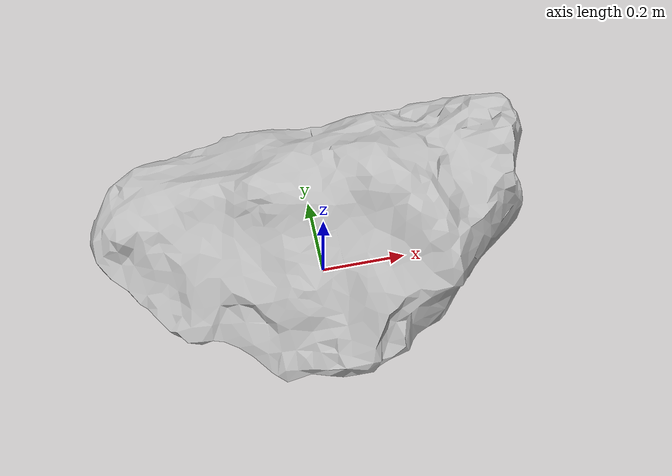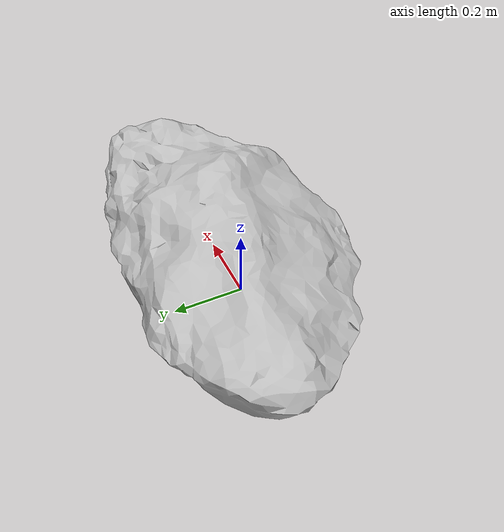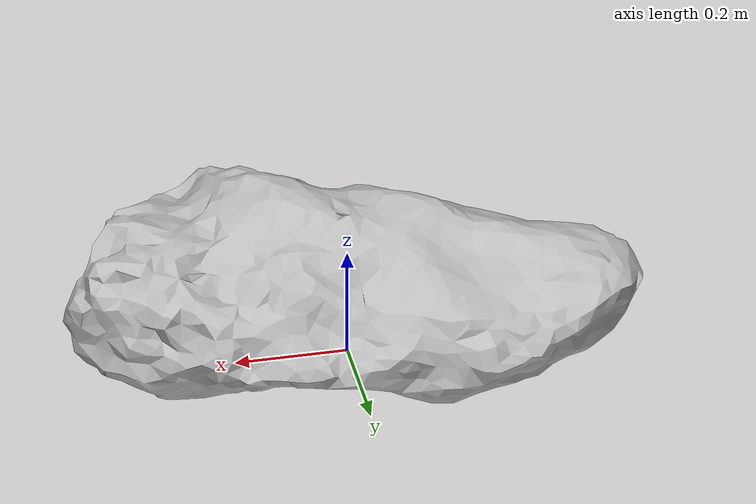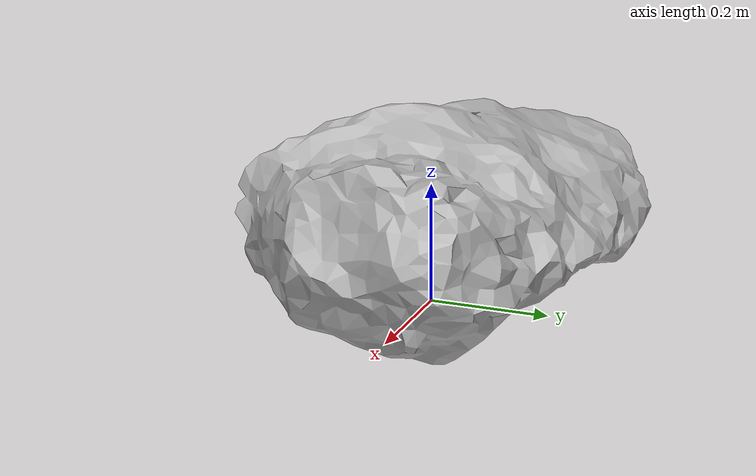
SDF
<?xml version="1.0" ?>
<sdf version="1.6">
  <model name='Stone_01'>
    <pose frame=''>0 0 0.2 0 -0 0</pose>
    <!-- The model will move on its own, if it is not a static model.
         I tried to fix this, but couldn't find a solution. -->
    <static>true</static>
    <allow_auto_disable>true</allow_auto_disable>
    <link name='Stone_01_link'>
      <inertial>
        <!-- Volume: 0.078717 m^3, Density: ~2000 kg/m^3 -->
        <mass>157</mass>
        <!-- Inertia Tensor is :
            |  0.001646   0.000009  -0.000341 |
            |  0.000009   0.004440  -0.000014 |
            | -0.000341  -0.000014   0.005409 | -->
        <inertia>
          <ixx>0.013198</ixx>
          <ixy>0.000071</ixy>
          <ixz>-0.002737</ixz>
          <iyy>0.035595</iyy>
          <iyz>-0.000109</iyz>
          <izz>0.043366</izz>
        </inertia>
        <!-- Center of Mass  is 0.026819 0.042579 -0.021161 -->
        <pose>0.026819 0.042579 -0.021161 0 0 0</pose>
      </inertial>
      <collision name='collision'>
        <pose>0 0 0 0 -0 0</pose>
        <geometry>
          <box>
            <!-- TODO: Better collision box. Maybe an ultra low poly rock. -->
            <size>1.000000  0.642406  0.326631</size>
          </box>
        </geometry>
        <max_contacts>10</max_contacts>
        <surface>
          <contact>
            <ode/>
          </contact>
          <bounce/>
          <friction>
            <ode>
              <mu>10</mu>
              <mu2>10</mu2>
            </ode>
          </friction>
        </surface>
      </collision>
      <visual name='visual'>
        <geometry>
          <mesh>
            <uri>model://stone_01/meshes/stone_01.dae</uri>
            <scale>1 1 1</scale>
          </mesh>
        </geometry>
        <material>
          <pbr>
            <metal>
              <albedo_map>model://stone_01/textures/stone_01.jpg</albedo_map>
              <ambient_occlusion_map>model://stone_01/textures/stone_01_occlusion.jpg</ambient_occlusion_map>
              <normal_map type="tangent">model://stone_01/textures/stone_01_normal.jpg</normal_map>
            </metal>
          </pbr>
        </material>
      </visual>
      <self_collide>0</self_collide>
      <enable_wind>0</enable_wind>
      <kinematic>0</kinematic>
    </link>
  </model>
</sdf>
